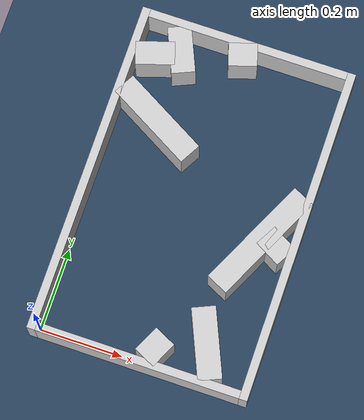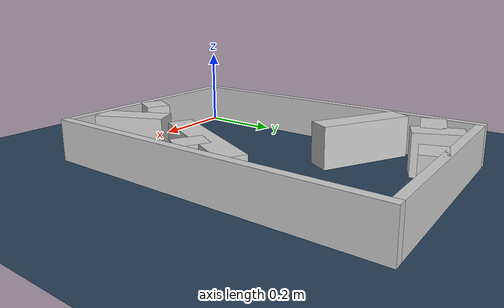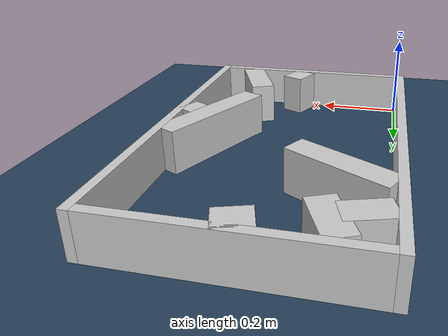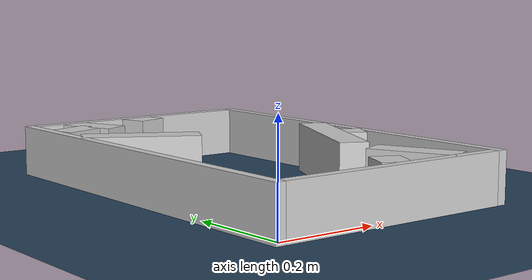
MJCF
<?xml version="1.0" ?>
<mujoco model="generated_real_template">
  <compiler angle="degree"/>
  <option timestep="0.002" integrator="implicitfast" iterations="100" cone="elliptic"/>
  <default>
    <geom density="1"/>
  </default>
  <asset>
    <texture builtin="gradient" height="3072" rgb1="0.3 0.5 0.7" rgb2="0 0 0" type="skybox" width="512"/>
    <texture builtin="checker" height="300" mark="edge" markrgb="0.8 0.8 0.8" name="groundplane" rgb1="0.2 0.3 0.4" rgb2="0.1 0.2 0.3" type="2d" width="300"/>
    <material name="groundplane" reflectance="0.2" texrepeat="5 5" texture="groundplane" texuniform="true"/>
  </asset>
  <worldbody>
    <light dir="0 0 -1" directional="true" pos="0 0 1.5"/>
    <geom name="floor" type="plane" condim="4" friction="0.5 0.005 0.001" material="groundplane" size="0 0 0.05"/>
    <body name="walls">
      <geom name="wall_boundary_left" type="box" condim="4" friction="1.0 0.005 0.0001" rgba="0.8 0.8 0.8 1" pos="-0.010000 0.387500 0.050000" euler="0 0 0.000000" size="0.010000 0.407500 0.050000"/>
      <geom name="wall_boundary_right" type="box" condim="4" friction="1.0 0.005 0.0001" rgba="0.8 0.8 0.8 1" pos="0.500000 0.387500 0.050000" euler="0 0 0.000000" size="0.010000 0.407500 0.050000"/>
      <geom name="wall_boundary_bottom" type="box" condim="4" friction="1.0 0.005 0.0001" rgba="0.8 0.8 0.8 1" pos="0.245000 -0.010000 0.050000" euler="0 0 0.000000" size="0.245000 0.010000 0.050000"/>
      <geom name="wall_boundary_top" type="box" condim="4" friction="1.0 0.005 0.0001" rgba="0.8 0.8 0.8 1" pos="0.245000 0.785000 0.050000" euler="0 0 0.000000" size="0.245000 0.010000 0.050000"/>
      <geom name="wall_inner_1_1" type="box" condim="4" friction="1.0 0.005 0.0001" rgba="0.8 0.8 0.8 1" pos="0.044610 0.694781 0.050000" euler="0 0 17.634023" size="0.046810 0.028500 0.050000"/>
      <geom name="wall_inner_1_2" type="box" condim="4" friction="1.0 0.005 0.0001" rgba="0.8 0.8 0.8 1" pos="0.241733 0.757441 0.050000" euler="0 0 17.634023" size="0.034322 0.028500 0.050000"/>
      <geom name="wall_inner_2_1" type="box" condim="4" friction="1.0 0.005 0.0001" rgba="0.8 0.8 0.8 1" pos="0.100453 0.722603 0.050000" euler="0 0 -66.485358" size="0.057142 0.028500 0.050000"/>
      <geom name="wall_inner_2_2" type="box" condim="4" friction="1.0 0.005 0.0001" rgba="0.8 0.8 0.8 1" pos="0.381070 0.077679 0.050000" euler="0 0 -66.485358" size="0.084714 0.028500 0.050000"/>
      <geom name="wall_inner_3_1" type="box" condim="4" friction="1.0 0.005 0.0001" rgba="0.8 0.8 0.8 1" pos="0.101104 0.543894 0.050000" euler="0 0 -29.221717" size="0.115847 0.028500 0.050000"/>
      <geom name="wall_inner_3_2" type="box" condim="4" friction="1.0 0.005 0.0001" rgba="0.8 0.8 0.8 1" pos="0.459646 0.343333 0.050000" euler="0 0 -29.221717" size="0.034781 0.028500 0.050000"/>
      <geom name="wall_inner_4_1" type="box" condim="4" friction="1.0 0.005 0.0001" rgba="0.8 0.8 0.8 1" pos="0.421765 0.345079 0.050000" euler="0 0 -115.502142" size="0.145190 0.028500 0.050000"/>
      <geom name="wall_inner_4_2" type="box" condim="4" friction="1.0 0.005 0.0001" rgba="0.8 0.8 0.8 1" pos="0.272077 0.031283 0.050000" euler="0 0 -115.502142" size="0.034660 0.028500 0.050000"/>
    </body>
  </worldbody>
</mujoco>
